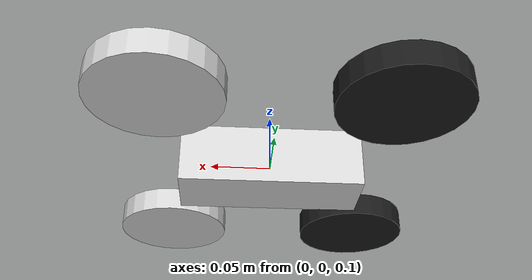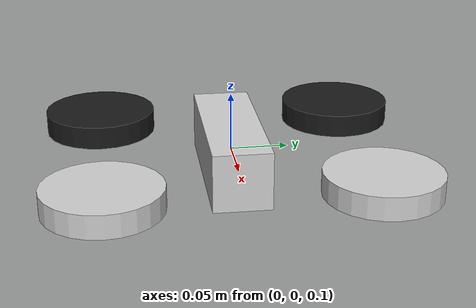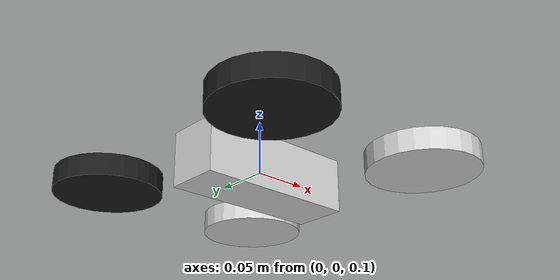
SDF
<?xml version='1.0'?>
<sdf version='1.4'>
  <model name="bebop2_rl_aero">
    <!-- Gazebo +X points east/right in the Cyberzoo top view. -->
    <pose>0 0 .1 0 0 0</pose>

    <link name="chassis">
      <velocity_decay>
        <!--
          The dedicated NPS airframe applies the complete Matlab aerodynamic
          force/moment model, so Gazebo damping must not add a second force.
        -->
        <linear>0.0</linear>
        <angular>0.0</angular>
      </velocity_decay>

      <inertial>
        <mass>0.503</mass> // fixed child links add 0.007 kg, for 0.510 kg total
        <inertia>
          <!-- Child-link inertia and parallel-axis terms bring the assembled
               model to Python's 0.001920/0.001850/0.003340 kg.m^2. -->
          <ixx> 0.001169375 </ixx> <!-- Default of 0.001169375, 0.001096875, 0.002536250 -->
          <iyy> 0.001096875 </iyy>
          <izz> 0.002536250 </izz>
          <ixy> 0. </ixy>
          <ixz> 0. </ixz>
          <iyz> 0. </iyz>
        </inertia>
      </inertial>

      <collision name="collision">
        <geometry>
          <box>
            <size>0.4 0.4 0.05</size>
          </box>
        </geometry>
      </collision>

      <visual name="visual">
        <geometry>
          <box>
            <size>0.15 0.05 0.05</size>
          </box>
        </geometry>
        <material>
          <diffuse>0.82 0.82 0.82 1</diffuse>
          <ambient>0.82 0.82 0.82 1</ambient>
        </material>
      </visual>

      <sensor name="contactsensor" type="contact">
        <contact>
          <collision>collision</collision>
        </contact>
      </sensor>
    </link>

    <!-- MOTORS -->
    <link name="nw_motor">
      <pose>0.0875 0.1125 0 0 0 0</pose>
      <inertial>
        <mass>0.001</mass>
        <inertia>
          <ixx>0.0001</ixx>
          <iyy>0.0001</iyy>
          <izz>0.0001</izz>
          <ixy>0</ixy>
          <iyz>0</iyz>
          <ixz>0</ixz>
        </inertia>
      </inertial>
      <visual name="visual">
        <geometry>
          <cylinder>
            <radius>0.05</radius>
            <length>0.02</length>
          </cylinder>
        </geometry>
        <material>
          <diffuse>0.82 0.82 0.82 1</diffuse>
          <ambient>0.82 0.82 0.82 1</ambient>
        </material>
      </visual>
    </link>

    <joint type="fixed" name="nw_motor_joint">
      <parent>chassis</parent>
      <child>nw_motor</child>
    </joint>

    <link name="se_motor">
      <pose>-0.0875 -0.1125 0 0 0 0</pose>
      <inertial>
        <mass>0.001</mass>
        <inertia>
          <ixx>0.0001</ixx>
          <iyy>0.0001</iyy>
          <izz>0.0001</izz>
          <ixy>0</ixy>
          <iyz>0</iyz>
          <ixz>0</ixz>
        </inertia>
      </inertial>
      <visual name="visual">
        <geometry>
          <cylinder>
            <radius>0.05</radius>
            <length>0.02</length>
          </cylinder>
        </geometry>
        <material>
          <diffuse>0.1 0.1 0.1 1</diffuse>
          <ambient>0.1 0.1 0.1 1</ambient>
        </material>
      </visual>
    </link>

    <joint type="fixed" name="se_motor_joint">
      <parent>chassis</parent>
      <child>se_motor</child>
    </joint>

    <link name="ne_motor">
      <pose>0.0875 -0.1125 0 0 0 0</pose>
      <inertial>
        <mass>0.001</mass>
        <inertia>
          <ixx>0.0001</ixx>
          <iyy>0.0001</iyy>
          <izz>0.0001</izz>
          <ixy>0</ixy>
          <iyz>0</iyz>
          <ixz>0</ixz>
        </inertia>
      </inertial>
      <visual name="visual">
        <geometry>
          <cylinder>
            <radius>0.05</radius>
            <length>0.02</length>
          </cylinder>
        </geometry>
        <material>
          <diffuse>0.82 0.82 0.82 1</diffuse>
          <ambient>0.82 0.82 0.82 1</ambient>
        </material>
      </visual>
    </link>

    <joint type="fixed" name="ne_motor_joint">
      <parent>chassis</parent>
      <child>ne_motor</child>
    </joint>

    <link name="sw_motor">
      <pose>-0.0875 0.1125 0 0 0 0</pose>
      <inertial>
        <mass>0.001</mass>
        <inertia>
          <ixx>0.0001</ixx>
          <iyy>0.0001</iyy>
          <izz>0.0001</izz>
          <ixy>0</ixy>
          <iyz>0</iyz>
          <ixz>0</ixz>
        </inertia>
      </inertial>
      <visual name="visual">
        <geometry>
          <cylinder>
            <radius>0.05</radius>
            <length>0.02</length>
          </cylinder>
        </geometry>
        <material>
          <diffuse>0.1 0.1 0.1 1</diffuse>
          <ambient>0.1 0.1 0.1 1</ambient>
        </material>
      </visual>
    </link>

    <joint type="fixed" name="sw_motor_joint">
      <parent>chassis</parent>
      <child>sw_motor</child>
    </joint>

    <link name="sonar">
      <pose>0 0 0 0 0 0</pose>
      <inertial>
        <mass>0.001</mass>
        <inertia>
          <ixx>0.0001</ixx>
          <iyy>0.0001</iyy>
          <izz>0.0001</izz>
          <ixy>0</ixy>
          <iyz>0</iyz>
          <ixz>0</ixz>
        </inertia>
      </inertial>
      <sensor name="sonarsensor" type="sonar">
        <sonar>
          <min>0.20</min>
          <max>5.0</max>
          <radius>0.50</radius>
        </sonar>
      </sensor>
    </link>

    <joint name="sonar_joint" type="fixed">
      <parent>chassis</parent>
      <child>sonar</child>
    </joint>

    <!-- CAMERAS -->

    <link name="front_camera">
      <pose>0.15 0 0 -1.57 0.33 0</pose><!-- Bebop camera output is rotated 90 degrees and pitched slightly downwards -->
      <inertial>
        <mass>0.001</mass>
        <inertia>
          <ixx>0.0001</ixx>
          <iyy>0.0001</iyy>
          <izz>0.0001</izz>
          <ixy>0</ixy>
          <iyz>0</iyz>
          <ixz>0</ixz>
        </inertia>
      </inertial>
      <sensor type="wideanglecamera" name="mt9f002">
        <update_rate>15.0</update_rate><!-- adjust with MT9F002_TARGET_FPS -->
        <camera>
          <image>
            <width>4608</width><!-- Full sensor resolution -->
            <height>3288</height><!-- Full sensor resolution -->
            <format>R8G8B8</format>
          </image>
          <horizontal_fov>3.7</horizontal_fov>
          <lens>
            <type>equisolid_angle</type>
            <scale_to_hfov>true</scale_to_hfov>
            <cutoff_angle>1.8</cutoff_angle>
            <env_texture_size>2048</env_texture_size><!-- with MT9F002_ZOOM = 1.00, will be scaled by NPS -->
          </lens>
          <clip>
            <near>0.01</near>
            <far>300</far>
          </clip>
          <noise>
            <type>gaussian</type>
            <!-- Noise is sampled independently per pixel on each frame. That pixel's
              noise value is added to each of its color channels, which at that point lie
              in the range [0,1]. -->
            <mean>0.0</mean>
            <stddev>0.007</stddev>
          </noise>
        </camera>
      </sensor>
    </link>

    <joint name="front_camera_joint" type="fixed">
      <parent>chassis</parent>
      <child>front_camera</child>
    </joint>

    <link name="bottom_camera">
      <pose>0 0 0 0 1.57 0</pose>
      <inertial>
        <mass>0.001</mass>
        <inertia>
          <ixx>0.0001</ixx>
          <iyy>0.0001</iyy>
          <izz>0.0001</izz>
          <ixy>0</ixy>
          <iyz>0</iyz>
          <ixz>0</ixz>
        </inertia>
      </inertial>
      <sensor type="camera" name="mt9v117">
        <update_rate>90.0</update_rate>
        <camera>
          <horizontal_fov>0.7175</horizontal_fov>
          <image>
            <width>240</width>
            <height>240</height>
            <format>R8G8B8</format>
          </image>
          <clip>
            <near>0.02</near>
            <far>300</far>
          </clip>
          <noise>
            <type>gaussian</type>
            <!-- Noise is sampled independently per pixel on each frame. That pixel's
              noise value is added to each of its color channels, which at that point lie
              in the range [0,1]. -->
            <mean>0.0</mean>
            <stddev>0.007</stddev>
          </noise>
        </camera>
      </sensor>
    </link>

    <joint name="bottom_camera_joint" type="fixed">
      <parent>chassis</parent>
      <child>bottom_camera</child>
    </joint>
  </model>
</sdf>
